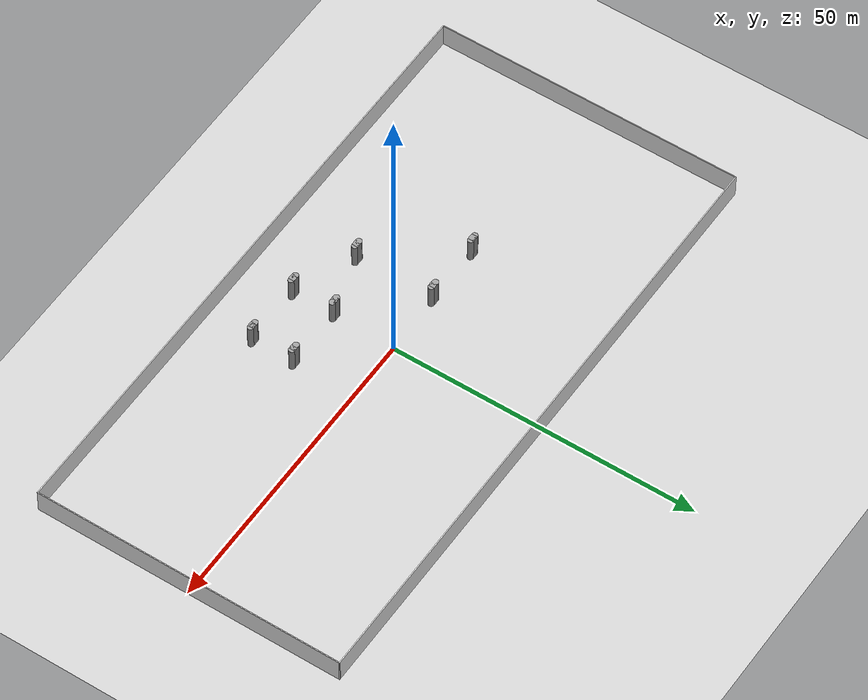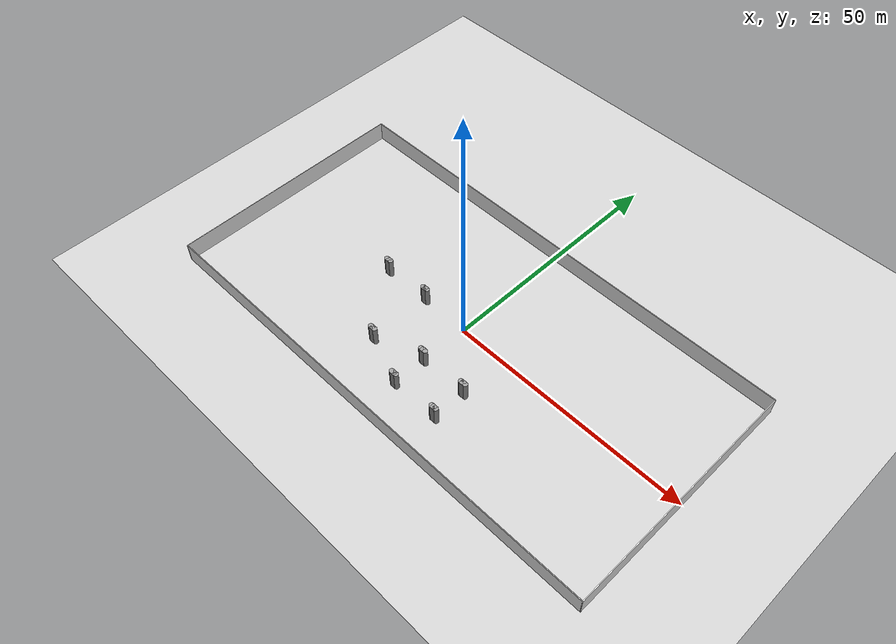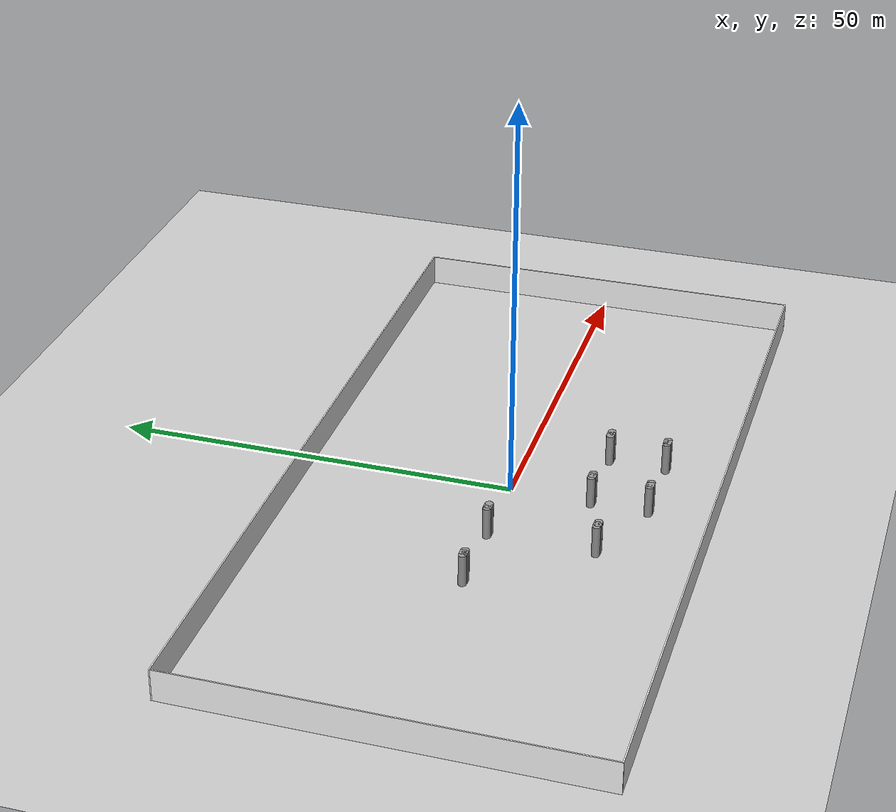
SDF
<sdf version="1.6">
 <world name="default">
  <model name="ground_plane">
   <static>1</static>
   <link name="link">
    <collision name="collision">
     <geometry><plane><normal>0 0 1</normal><size>100 100</size></plane></geometry>
     <surface><friction><ode><mu>100</mu><mu2>50</mu2></ode></friction></surface>
    </collision>
    <visual name="visual">
     <cast_shadows>0</cast_shadows>
     <geometry><plane><normal>0 0 1</normal><size>100 100</size></plane></geometry>
     <material>
      <script><uri>file://media/materials/scripts/gazebo.material</uri><name>Gazebo/Grey</name></script>
     </material>
    </visual>
   </link>
  </model>
  <model name="outer_wall">
   <link name="Wall_12">
    <collision name="Wall_12_Collision">
     <geometry><box><size>100.15 0.15 4</size></box></geometry>
     <pose>0 0 2 0 -0 0</pose>
    </collision>
    <visual name="Wall_12_Visual">
     <pose>0 0 2 0 -0 0</pose>
     <geometry><box><size>100.15 0.15 4</size></box></geometry>
     <material>
      <script>
       <uri>file://media/materials/scripts/gray_tile_100.material</uri>
       <name>gray_tile_100/Diffuse</name>
      </script>
      <ambient>1 1 1 1</ambient>
     </material>
     <meta><layer>0</layer></meta>
    </visual>
    <pose>-1e-06 -25 0 0 -0 0</pose>
   </link>
   <link name="Wall_13">
    <collision name="Wall_13_Collision">
     <geometry><box><size>50.15 0.15 4</size></box></geometry>
     <pose>0 0 2 0 -0 0</pose>
    </collision>
    <visual name="Wall_13_Visual">
     <pose>0 0 2 0 -0 0</pose>
     <geometry><box><size>50.15 0.15 4</size></box></geometry>
     <material>
      <script>
       <uri>file://media/materials/scripts/gray_tile_50.material</uri>
       <name>gray_tile_50/Diffuse</name>
      </script>
      <ambient>1 1 1 1</ambient>
     </material>
     <meta><layer>0</layer></meta>
    </visual>
    <pose>50 -1e-06 0 0 -0 1.5708</pose>
   </link>
   <link name="Wall_14">
    <collision name="Wall_14_Collision">
     <geometry><box><size>100.15 0.15 4</size></box></geometry>
     <pose>0 0 2 0 -0 0</pose>
    </collision>
    <visual name="Wall_14_Visual">
     <pose>0 0 2 0 -0 0</pose>
     <geometry><box><size>100.15 0.15 4</size></box></geometry>
     <material>
      <script>
       <uri>file://media/materials/scripts/gray_tile_100.material</uri>
       <name>gray_tile_100/Diffuse</name>
      </script>
      <ambient>1 1 1 1</ambient>
     </material>
     <meta><layer>0</layer></meta>
    </visual>
    <pose>-1e-06 25 0 0 -0 3.14159</pose>
   </link>
   <link name="Wall_15">
    <collision name="Wall_15_Collision">
     <geometry><box><size>50.15 0.15 4</size></box></geometry>
     <pose>0 0 2 0 -0 0</pose>
    </collision>
    <visual name="Wall_15_Visual">
     <pose>0 0 2 0 -0 0</pose>
     <geometry><box><size>50.15 0.15 4</size></box></geometry>
     <material>
      <script>
       <uri>file://media/materials/scripts/gray_tile_50.material</uri>
       <name>gray_tile_50/Diffuse</name>
      </script>
      <ambient>1 1 1 1</ambient>
     </material>
     <meta><layer>0</layer></meta>
    </visual>
    <pose>-50 -1e-06 0 0 -0 -1.5708</pose>
   </link>
   <static>1</static>
  </model>
  <model name="pillar_clone">
   <link name="link_0">
    <inertial>
     <mass>1</mass>
     <inertia>
      <ixx>0.166667</ixx>
      <ixy>0</ixy>
      <ixz>0</ixz>
      <iyy>0.166667</iyy>
      <iyz>0</iyz>
      <izz>0.166667</izz>
     </inertia>
    </inertial>
    <kinematic>1</kinematic>
    <visual name="visual">
     <geometry><box><size>1 1 4</size></box></geometry>
     <material>
      <lighting>1</lighting>
      <script><uri>file://media/materials/scripts/gazebo.material</uri><name>Gazebo/Grey</name></script>
      <shader type="pixel"><normal_map>__default__</normal_map></shader>
      <ambient>0.3 0.3 0.3 1</ambient>
      <diffuse>0.7 0.7 0.7 1</diffuse>
      <specular>0.01 0.01 0.01 1</specular>
      <emissive>0 0 0 1</emissive>
     </material>
    </visual>
    <collision name="collision">
     <geometry><box><size>1 1 4</size></box></geometry>
     <surface>
      <friction>
       <ode><mu>1</mu><mu2>1</mu2><fdir1>0 0 0</fdir1><slip1>0</slip1><slip2>0</slip2></ode>
       <torsional>
        <coefficient>1</coefficient>
        <patch_radius>0</patch_radius>
        <surface_radius>0</surface_radius>
        <use_patch_radius>1</use_patch_radius>
        <ode><slip>0</slip></ode>
       </torsional>
      </friction>
      <bounce><restitution_coefficient>0</restitution_coefficient><threshold>1e+06</threshold></bounce>
      <contact>
       <collide_without_contact>0</collide_without_contact>
       <collide_without_contact_bitmask>1</collide_without_contact_bitmask>
       <collide_bitmask>1</collide_bitmask>
       <ode>
        <soft_cfm>0</soft_cfm>
        <soft_erp>0.2</soft_erp>
        <kp>1e+13</kp>
        <kd>1</kd>
        <max_vel>0.01</max_vel>
        <min_depth>0</min_depth>
       </ode>
       <bullet>
        <split_impulse>1</split_impulse>
        <split_impulse_penetration_threshold>-0.01</split_impulse_penetration_threshold>
        <soft_cfm>0</soft_cfm>
        <soft_erp>0.2</soft_erp>
        <kp>1e+13</kp>
        <kd>1</kd>
       </bullet>
      </contact>
     </surface>
    </collision>
   </link>
   <link name="link_1">
    <inertial>
     <mass>1</mass>
     <inertia><ixx>0.145833</ixx><ixy>0</ixy><ixz>0</ixz><iyy>0.145833</iyy><iyz>0</iyz><izz>0.125</izz></inertia>
    </inertial>
    <pose>-0.5 0 0 0 -0 0</pose>
    <kinematic>1</kinematic>
    <visual name="visual">
     <geometry><cylinder><radius>0.5</radius><length>4</length></cylinder></geometry>
     <material>
      <lighting>1</lighting>
      <script><uri>file://media/materials/scripts/gazebo.material</uri><name>Gazebo/Grey</name></script>
      <shader type="pixel"><normal_map>__default__</normal_map></shader>
      <ambient>0.3 0.3 0.3 1</ambient>
      <diffuse>0.7 0.7 0.7 1</diffuse>
      <specular>0.01 0.01 0.01 1</specular>
      <emissive>0 0 0 1</emissive>
     </material>
    </visual>
    <collision name="collision">
     <geometry><cylinder><radius>0.5</radius><length>4</length></cylinder></geometry>
     <surface>
      <friction>
       <ode><mu>1</mu><mu2>1</mu2><fdir1>0 0 0</fdir1><slip1>0</slip1><slip2>0</slip2></ode>
       <torsional>
        <coefficient>1</coefficient>
        <patch_radius>0</patch_radius>
        <surface_radius>0</surface_radius>
        <use_patch_radius>1</use_patch_radius>
        <ode><slip>0</slip></ode>
       </torsional>
      </friction>
      <bounce><restitution_coefficient>0</restitution_coefficient><threshold>1e+06</threshold></bounce>
      <contact>
       <collide_without_contact>0</collide_without_contact>
       <collide_without_contact_bitmask>1</collide_without_contact_bitmask>
       <collide_bitmask>1</collide_bitmask>
       <ode>
        <soft_cfm>0</soft_cfm>
        <soft_erp>0.2</soft_erp>
        <kp>1e+13</kp>
        <kd>1</kd>
        <max_vel>0.01</max_vel>
        <min_depth>0</min_depth>
       </ode>
       <bullet>
        <split_impulse>1</split_impulse>
        <split_impulse_penetration_threshold>-0.01</split_impulse_penetration_threshold>
        <soft_cfm>0</soft_cfm>
        <soft_erp>0.2</soft_erp>
        <kp>1e+13</kp>
        <kd>1</kd>
       </bullet>
      </contact>
     </surface>
    </collision>
   </link>
   <link name="link_2">
    <inertial>
     <mass>1</mass>
     <inertia><ixx>0.145833</ixx><ixy>0</ixy><ixz>0</ixz><iyy>0.145833</iyy><iyz>0</iyz><izz>0.125</izz></inertia>
    </inertial>
    <pose>0.5 0 0 0 -0 0</pose>
    <kinematic>1</kinematic>
    <visual name="visual">
     <geometry><cylinder><radius>0.5</radius><length>4</length></cylinder></geometry>
     <material>
      <lighting>1</lighting>
      <script><uri>file://media/materials/scripts/gazebo.material</uri><name>Gazebo/Grey</name></script>
      <shader type="pixel"><normal_map>__default__</normal_map></shader>
      <ambient>0.3 0.3 0.3 1</ambient>
      <diffuse>0.7 0.7 0.7 1</diffuse>
      <specular>0.01 0.01 0.01 1</specular>
      <emissive>0 0 0 1</emissive>
     </material>
    </visual>
    <collision name="collision">
     <geometry><cylinder><radius>0.5</radius><length>4</length></cylinder></geometry>
     <surface>
      <friction>
       <ode><mu>1</mu><mu2>1</mu2><fdir1>0 0 0</fdir1><slip1>0</slip1><slip2>0</slip2></ode>
       <torsional>
        <coefficient>1</coefficient>
        <patch_radius>0</patch_radius>
        <surface_radius>0</surface_radius>
        <use_patch_radius>1</use_patch_radius>
        <ode><slip>0</slip></ode>
       </torsional>
      </friction>
      <bounce><restitution_coefficient>0</restitution_coefficient><threshold>1e+06</threshold></bounce>
      <contact>
       <collide_without_contact>0</collide_without_contact>
       <collide_without_contact_bitmask>1</collide_without_contact_bitmask>
       <collide_bitmask>1</collide_bitmask>
       <ode>
        <soft_cfm>0</soft_cfm>
        <soft_erp>0.2</soft_erp>
        <kp>1e+13</kp>
        <kd>1</kd>
        <max_vel>0.01</max_vel>
        <min_depth>0</min_depth>
       </ode>
       <bullet>
        <split_impulse>1</split_impulse>
        <split_impulse_penetration_threshold>-0.01</split_impulse_penetration_threshold>
        <soft_cfm>0</soft_cfm>
        <soft_erp>0.2</soft_erp>
        <kp>1e+13</kp>
        <kd>1</kd>
       </bullet>
      </contact>
     </surface>
    </collision>
   </link>
   <static>1</static>
   <pose>-10 -13 2 0 -0 0</pose>
  </model>
  <model name="pillar_clone_0">
   <link name="link_0">
    <inertial>
     <mass>1</mass>
     <inertia>
      <ixx>0.166667</ixx>
      <ixy>0</ixy>
      <ixz>0</ixz>
      <iyy>0.166667</iyy>
      <iyz>0</iyz>
      <izz>0.166667</izz>
     </inertia>
    </inertial>
    <kinematic>1</kinematic>
    <visual name="visual">
     <geometry><box><size>1 1 4</size></box></geometry>
     <material>
      <lighting>1</lighting>
      <script><uri>file://media/materials/scripts/gazebo.material</uri><name>Gazebo/Grey</name></script>
      <shader type="pixel"><normal_map>__default__</normal_map></shader>
      <ambient>0.3 0.3 0.3 1</ambient>
      <diffuse>0.7 0.7 0.7 1</diffuse>
      <specular>0.01 0.01 0.01 1</specular>
      <emissive>0 0 0 1</emissive>
     </material>
    </visual>
    <collision name="collision">
     <geometry><box><size>1 1 4</size></box></geometry>
     <surface>
      <friction>
       <ode><mu>1</mu><mu2>1</mu2><fdir1>0 0 0</fdir1><slip1>0</slip1><slip2>0</slip2></ode>
       <torsional>
        <coefficient>1</coefficient>
        <patch_radius>0</patch_radius>
        <surface_radius>0</surface_radius>
        <use_patch_radius>1</use_patch_radius>
        <ode><slip>0</slip></ode>
       </torsional>
      </friction>
      <bounce><restitution_coefficient>0</restitution_coefficient><threshold>1e+06</threshold></bounce>
      <contact>
       <collide_without_contact>0</collide_without_contact>
       <collide_without_contact_bitmask>1</collide_without_contact_bitmask>
       <collide_bitmask>1</collide_bitmask>
       <ode>
        <soft_cfm>0</soft_cfm>
        <soft_erp>0.2</soft_erp>
        <kp>1e+13</kp>
        <kd>1</kd>
        <max_vel>0.01</max_vel>
        <min_depth>0</min_depth>
       </ode>
       <bullet>
        <split_impulse>1</split_impulse>
        <split_impulse_penetration_threshold>-0.01</split_impulse_penetration_threshold>
        <soft_cfm>0</soft_cfm>
        <soft_erp>0.2</soft_erp>
        <kp>1e+13</kp>
        <kd>1</kd>
       </bullet>
      </contact>
     </surface>
    </collision>
   </link>
   <link name="link_1">
    <inertial>
     <mass>1</mass>
     <inertia><ixx>0.145833</ixx><ixy>0</ixy><ixz>0</ixz><iyy>0.145833</iyy><iyz>0</iyz><izz>0.125</izz></inertia>
    </inertial>
    <pose>-0.5 0 0 0 -0 0</pose>
    <kinematic>1</kinematic>
    <visual name="visual">
     <geometry><cylinder><radius>0.5</radius><length>4</length></cylinder></geometry>
     <material>
      <lighting>1</lighting>
      <script><uri>file://media/materials/scripts/gazebo.material</uri><name>Gazebo/Grey</name></script>
      <shader type="pixel"><normal_map>__default__</normal_map></shader>
      <ambient>0.3 0.3 0.3 1</ambient>
      <diffuse>0.7 0.7 0.7 1</diffuse>
      <specular>0.01 0.01 0.01 1</specular>
      <emissive>0 0 0 1</emissive>
     </material>
    </visual>
    <collision name="collision">
     <geometry><cylinder><radius>0.5</radius><length>4</length></cylinder></geometry>
     <surface>
      <friction>
       <ode><mu>1</mu><mu2>1</mu2><fdir1>0 0 0</fdir1><slip1>0</slip1><slip2>0</slip2></ode>
       <torsional>
        <coefficient>1</coefficient>
        <patch_radius>0</patch_radius>
        <surface_radius>0</surface_radius>
        <use_patch_radius>1</use_patch_radius>
        <ode><slip>0</slip></ode>
       </torsional>
      </friction>
      <bounce><restitution_coefficient>0</restitution_coefficient><threshold>1e+06</threshold></bounce>
      <contact>
       <collide_without_contact>0</collide_without_contact>
       <collide_without_contact_bitmask>1</collide_without_contact_bitmask>
       <collide_bitmask>1</collide_bitmask>
       <ode>
        <soft_cfm>0</soft_cfm>
        <soft_erp>0.2</soft_erp>
        <kp>1e+13</kp>
        <kd>1</kd>
        <max_vel>0.01</max_vel>
        <min_depth>0</min_depth>
       </ode>
       <bullet>
        <split_impulse>1</split_impulse>
        <split_impulse_penetration_threshold>-0.01</split_impulse_penetration_threshold>
        <soft_cfm>0</soft_cfm>
        <soft_erp>0.2</soft_erp>
        <kp>1e+13</kp>
        <kd>1</kd>
       </bullet>
      </contact>
     </surface>
    </collision>
   </link>
   <link name="link_2">
    <inertial>
     <mass>1</mass>
     <inertia><ixx>0.145833</ixx><ixy>0</ixy><ixz>0</ixz><iyy>0.145833</iyy><iyz>0</iyz><izz>0.125</izz></inertia>
    </inertial>
    <pose>0.5 0 0 0 -0 0</pose>
    <kinematic>1</kinematic>
    <visual name="visual">
     <geometry><cylinder><radius>0.5</radius><length>4</length></cylinder></geometry>
     <material>
      <lighting>1</lighting>
      <script><uri>file://media/materials/scripts/gazebo.material</uri><name>Gazebo/Grey</name></script>
      <shader type="pixel"><normal_map>__default__</normal_map></shader>
      <ambient>0.3 0.3 0.3 1</ambient>
      <diffuse>0.7 0.7 0.7 1</diffuse>
      <specular>0.01 0.01 0.01 1</specular>
      <emissive>0 0 0 1</emissive>
     </material>
    </visual>
    <collision name="collision">
     <geometry><cylinder><radius>0.5</radius><length>4</length></cylinder></geometry>
     <surface>
      <friction>
       <ode><mu>1</mu><mu2>1</mu2><fdir1>0 0 0</fdir1><slip1>0</slip1><slip2>0</slip2></ode>
       <torsional>
        <coefficient>1</coefficient>
        <patch_radius>0</patch_radius>
        <surface_radius>0</surface_radius>
        <use_patch_radius>1</use_patch_radius>
        <ode><slip>0</slip></ode>
       </torsional>
      </friction>
      <bounce><restitution_coefficient>0</restitution_coefficient><threshold>1e+06</threshold></bounce>
      <contact>
       <collide_without_contact>0</collide_without_contact>
       <collide_without_contact_bitmask>1</collide_without_contact_bitmask>
       <collide_bitmask>1</collide_bitmask>
       <ode>
        <soft_cfm>0</soft_cfm>
        <soft_erp>0.2</soft_erp>
        <kp>1e+13</kp>
        <kd>1</kd>
        <max_vel>0.01</max_vel>
        <min_depth>0</min_depth>
       </ode>
       <bullet>
        <split_impulse>1</split_impulse>
        <split_impulse_penetration_threshold>-0.01</split_impulse_penetration_threshold>
        <soft_cfm>0</soft_cfm>
        <soft_erp>0.2</soft_erp>
        <kp>1e+13</kp>
        <kd>1</kd>
       </bullet>
      </contact>
     </surface>
    </collision>
   </link>
   <static>1</static>
   <pose>0 -17 2 0 -0 0</pose>
  </model>
  <model name="pillar_clone_1">
   <link name="link_0">
    <inertial>
     <mass>1</mass>
     <inertia>
      <ixx>0.166667</ixx>
      <ixy>0</ixy>
      <ixz>0</ixz>
      <iyy>0.166667</iyy>
      <iyz>0</iyz>
      <izz>0.166667</izz>
     </inertia>
    </inertial>
    <kinematic>1</kinematic>
    <visual name="visual">
     <geometry><box><size>1 1 4</size></box></geometry>
     <material>
      <lighting>1</lighting>
      <script><uri>file://media/materials/scripts/gazebo.material</uri><name>Gazebo/Grey</name></script>
      <shader type="pixel"><normal_map>__default__</normal_map></shader>
      <ambient>0.3 0.3 0.3 1</ambient>
      <diffuse>0.7 0.7 0.7 1</diffuse>
      <specular>0.01 0.01 0.01 1</specular>
      <emissive>0 0 0 1</emissive>
     </material>
    </visual>
    <collision name="collision">
     <geometry><box><size>1 1 4</size></box></geometry>
     <surface>
      <friction>
       <ode><mu>1</mu><mu2>1</mu2><fdir1>0 0 0</fdir1><slip1>0</slip1><slip2>0</slip2></ode>
       <torsional>
        <coefficient>1</coefficient>
        <patch_radius>0</patch_radius>
        <surface_radius>0</surface_radius>
        <use_patch_radius>1</use_patch_radius>
        <ode><slip>0</slip></ode>
       </torsional>
      </friction>
      <bounce><restitution_coefficient>0</restitution_coefficient><threshold>1e+06</threshold></bounce>
      <contact>
       <collide_without_contact>0</collide_without_contact>
       <collide_without_contact_bitmask>1</collide_without_contact_bitmask>
       <collide_bitmask>1</collide_bitmask>
       <ode>
        <soft_cfm>0</soft_cfm>
        <soft_erp>0.2</soft_erp>
        <kp>1e+13</kp>
        <kd>1</kd>
        <max_vel>0.01</max_vel>
        <min_depth>0</min_depth>
       </ode>
       <bullet>
        <split_impulse>1</split_impulse>
        <split_impulse_penetration_threshold>-0.01</split_impulse_penetration_threshold>
        <soft_cfm>0</soft_cfm>
        <soft_erp>0.2</soft_erp>
        <kp>1e+13</kp>
        <kd>1</kd>
       </bullet>
      </contact>
     </surface>
    </collision>
   </link>
   <link name="link_1">
    <inertial>
     <mass>1</mass>
     <inertia><ixx>0.145833</ixx><ixy>0</ixy><ixz>0</ixz><iyy>0.145833</iyy><iyz>0</iyz><izz>0.125</izz></inertia>
    </inertial>
    <pose>-0.5 0 0 0 -0 0</pose>
    <kinematic>1</kinematic>
    <visual name="visual">
     <geometry><cylinder><radius>0.5</radius><length>4</length></cylinder></geometry>
     <material>
      <lighting>1</lighting>
      <script><uri>file://media/materials/scripts/gazebo.material</uri><name>Gazebo/Grey</name></script>
      <shader type="pixel"><normal_map>__default__</normal_map></shader>
      <ambient>0.3 0.3 0.3 1</ambient>
      <diffuse>0.7 0.7 0.7 1</diffuse>
      <specular>0.01 0.01 0.01 1</specular>
      <emissive>0 0 0 1</emissive>
     </material>
    </visual>
    <collision name="collision">
     <geometry><cylinder><radius>0.5</radius><length>4</length></cylinder></geometry>
     <surface>
      <friction>
       <ode><mu>1</mu><mu2>1</mu2><fdir1>0 0 0</fdir1><slip1>0</slip1><slip2>0</slip2></ode>
       <torsional>
        <coefficient>1</coefficient>
        <patch_radius>0</patch_radius>
        <surface_radius>0</surface_radius>
        <use_patch_radius>1</use_patch_radius>
        <ode><slip>0</slip></ode>
       </torsional>
      </friction>
      <bounce><restitution_coefficient>0</restitution_coefficient><threshold>1e+06</threshold></bounce>
      <contact>
       <collide_without_contact>0</collide_without_contact>
       <collide_without_contact_bitmask>1</collide_without_contact_bitmask>
       <collide_bitmask>1</collide_bitmask>
       <ode>
        <soft_cfm>0</soft_cfm>
        <soft_erp>0.2</soft_erp>
        <kp>1e+13</kp>
        <kd>1</kd>
        <max_vel>0.01</max_vel>
        <min_depth>0</min_depth>
       </ode>
       <bullet>
        <split_impulse>1</split_impulse>
        <split_impulse_penetration_threshold>-0.01</split_impulse_penetration_threshold>
        <soft_cfm>0</soft_cfm>
        <soft_erp>0.2</soft_erp>
        <kp>1e+13</kp>
        <kd>1</kd>
       </bullet>
      </contact>
     </surface>
    </collision>
   </link>
   <link name="link_2">
    <inertial>
     <mass>1</mass>
     <inertia><ixx>0.145833</ixx><ixy>0</ixy><ixz>0</ixz><iyy>0.145833</iyy><iyz>0</iyz><izz>0.125</izz></inertia>
    </inertial>
    <pose>0.5 0 0 0 -0 0</pose>
    <kinematic>1</kinematic>
    <visual name="visual">
     <geometry><cylinder><radius>0.5</radius><length>4</length></cylinder></geometry>
     <material>
      <lighting>1</lighting>
      <script><uri>file://media/materials/scripts/gazebo.material</uri><name>Gazebo/Grey</name></script>
      <shader type="pixel"><normal_map>__default__</normal_map></shader>
      <ambient>0.3 0.3 0.3 1</ambient>
      <diffuse>0.7 0.7 0.7 1</diffuse>
      <specular>0.01 0.01 0.01 1</specular>
      <emissive>0 0 0 1</emissive>
     </material>
    </visual>
    <collision name="collision">
     <geometry><cylinder><radius>0.5</radius><length>4</length></cylinder></geometry>
     <surface>
      <friction>
       <ode><mu>1</mu><mu2>1</mu2><fdir1>0 0 0</fdir1><slip1>0</slip1><slip2>0</slip2></ode>
       <torsional>
        <coefficient>1</coefficient>
        <patch_radius>0</patch_radius>
        <surface_radius>0</surface_radius>
        <use_patch_radius>1</use_patch_radius>
        <ode><slip>0</slip></ode>
       </torsional>
      </friction>
      <bounce><restitution_coefficient>0</restitution_coefficient><threshold>1e+06</threshold></bounce>
      <contact>
       <collide_without_contact>0</collide_without_contact>
       <collide_without_contact_bitmask>1</collide_without_contact_bitmask>
       <collide_bitmask>1</collide_bitmask>
       <ode>
        <soft_cfm>0</soft_cfm>
        <soft_erp>0.2</soft_erp>
        <kp>1e+13</kp>
        <kd>1</kd>
        <max_vel>0.01</max_vel>
        <min_depth>0</min_depth>
       </ode>
       <bullet>
        <split_impulse>1</split_impulse>
        <split_impulse_penetration_threshold>-0.01</split_impulse_penetration_threshold>
        <soft_cfm>0</soft_cfm>
        <soft_erp>0.2</soft_erp>
        <kp>1e+13</kp>
        <kd>1</kd>
       </bullet>
      </contact>
     </surface>
    </collision>
   </link>
   <static>1</static>
   <pose>10 -17 2 0 -0 0</pose>
  </model>
  <model name="pillar_clone_6">
   <link name="link_0">
    <inertial>
     <mass>1</mass>
     <inertia>
      <ixx>0.166667</ixx>
      <ixy>0</ixy>
      <ixz>0</ixz>
      <iyy>0.166667</iyy>
      <iyz>0</iyz>
      <izz>0.166667</izz>
     </inertia>
    </inertial>
    <kinematic>1</kinematic>
    <visual name="visual">
     <geometry><box><size>1 1 4</size></box></geometry>
     <material>
      <lighting>1</lighting>
      <script><uri>file://media/materials/scripts/gazebo.material</uri><name>Gazebo/Grey</name></script>
      <shader type="pixel"><normal_map>__default__</normal_map></shader>
      <ambient>0.3 0.3 0.3 1</ambient>
      <diffuse>0.7 0.7 0.7 1</diffuse>
      <specular>0.01 0.01 0.01 1</specular>
      <emissive>0 0 0 1</emissive>
     </material>
    </visual>
    <collision name="collision">
     <geometry><box><size>1 1 4</size></box></geometry>
     <surface>
      <friction>
       <ode><mu>1</mu><mu2>1</mu2><fdir1>0 0 0</fdir1><slip1>0</slip1><slip2>0</slip2></ode>
       <torsional>
        <coefficient>1</coefficient>
        <patch_radius>0</patch_radius>
        <surface_radius>0</surface_radius>
        <use_patch_radius>1</use_patch_radius>
        <ode><slip>0</slip></ode>
       </torsional>
      </friction>
      <bounce><restitution_coefficient>0</restitution_coefficient><threshold>1e+06</threshold></bounce>
      <contact>
       <collide_without_contact>0</collide_without_contact>
       <collide_without_contact_bitmask>1</collide_without_contact_bitmask>
       <collide_bitmask>1</collide_bitmask>
       <ode>
        <soft_cfm>0</soft_cfm>
        <soft_erp>0.2</soft_erp>
        <kp>1e+13</kp>
        <kd>1</kd>
        <max_vel>0.01</max_vel>
        <min_depth>0</min_depth>
       </ode>
       <bullet>
        <split_impulse>1</split_impulse>
        <split_impulse_penetration_threshold>-0.01</split_impulse_penetration_threshold>
        <soft_cfm>0</soft_cfm>
        <soft_erp>0.2</soft_erp>
        <kp>1e+13</kp>
        <kd>1</kd>
       </bullet>
      </contact>
     </surface>
    </collision>
   </link>
   <link name="link_1">
    <inertial>
     <mass>1</mass>
     <inertia><ixx>0.145833</ixx><ixy>0</ixy><ixz>0</ixz><iyy>0.145833</iyy><iyz>0</iyz><izz>0.125</izz></inertia>
    </inertial>
    <pose>-0.5 0 0 0 -0 0</pose>
    <kinematic>1</kinematic>
    <visual name="visual">
     <geometry><cylinder><radius>0.5</radius><length>4</length></cylinder></geometry>
     <material>
      <lighting>1</lighting>
      <script><uri>file://media/materials/scripts/gazebo.material</uri><name>Gazebo/Grey</name></script>
      <shader type="pixel"><normal_map>__default__</normal_map></shader>
      <ambient>0.3 0.3 0.3 1</ambient>
      <diffuse>0.7 0.7 0.7 1</diffuse>
      <specular>0.01 0.01 0.01 1</specular>
      <emissive>0 0 0 1</emissive>
     </material>
    </visual>
    <collision name="collision">
     <geometry><cylinder><radius>0.5</radius><length>4</length></cylinder></geometry>
     <surface>
      <friction>
       <ode><mu>1</mu><mu2>1</mu2><fdir1>0 0 0</fdir1><slip1>0</slip1><slip2>0</slip2></ode>
       <torsional>
        <coefficient>1</coefficient>
        <patch_radius>0</patch_radius>
        <surface_radius>0</surface_radius>
        <use_patch_radius>1</use_patch_radius>
        <ode><slip>0</slip></ode>
       </torsional>
      </friction>
      <bounce><restitution_coefficient>0</restitution_coefficient><threshold>1e+06</threshold></bounce>
      <contact>
       <collide_without_contact>0</collide_without_contact>
       <collide_without_contact_bitmask>1</collide_without_contact_bitmask>
       <collide_bitmask>1</collide_bitmask>
       <ode>
        <soft_cfm>0</soft_cfm>
        <soft_erp>0.2</soft_erp>
        <kp>1e+13</kp>
        <kd>1</kd>
        <max_vel>0.01</max_vel>
        <min_depth>0</min_depth>
       </ode>
       <bullet>
        <split_impulse>1</split_impulse>
        <split_impulse_penetration_threshold>-0.01</split_impulse_penetration_threshold>
        <soft_cfm>0</soft_cfm>
        <soft_erp>0.2</soft_erp>
        <kp>1e+13</kp>
        <kd>1</kd>
       </bullet>
      </contact>
     </surface>
    </collision>
   </link>
   <link name="link_2">
    <inertial>
     <mass>1</mass>
     <inertia><ixx>0.145833</ixx><ixy>0</ixy><ixz>0</ixz><iyy>0.145833</iyy><iyz>0</iyz><izz>0.125</izz></inertia>
    </inertial>
    <pose>0.5 0 0 0 -0 0</pose>
    <kinematic>1</kinematic>
    <visual name="visual">
     <geometry><cylinder><radius>0.5</radius><length>4</length></cylinder></geometry>
     <material>
      <lighting>1</lighting>
      <script><uri>file://media/materials/scripts/gazebo.material</uri><name>Gazebo/Grey</name></script>
      <shader type="pixel"><normal_map>__default__</normal_map></shader>
      <ambient>0.3 0.3 0.3 1</ambient>
      <diffuse>0.7 0.7 0.7 1</diffuse>
      <specular>0.01 0.01 0.01 1</specular>
      <emissive>0 0 0 1</emissive>
     </material>
    </visual>
    <collision name="collision">
     <geometry><cylinder><radius>0.5</radius><length>4</length></cylinder></geometry>
     <surface>
      <friction>
       <ode><mu>1</mu><mu2>1</mu2><fdir1>0 0 0</fdir1><slip1>0</slip1><slip2>0</slip2></ode>
       <torsional>
        <coefficient>1</coefficient>
        <patch_radius>0</patch_radius>
        <surface_radius>0</surface_radius>
        <use_patch_radius>1</use_patch_radius>
        <ode><slip>0</slip></ode>
       </torsional>
      </friction>
      <bounce><restitution_coefficient>0</restitution_coefficient><threshold>1e+06</threshold></bounce>
      <contact>
       <collide_without_contact>0</collide_without_contact>
       <collide_without_contact_bitmask>1</collide_without_contact_bitmask>
       <collide_bitmask>1</collide_bitmask>
       <ode>
        <soft_cfm>0</soft_cfm>
        <soft_erp>0.2</soft_erp>
        <kp>1e+13</kp>
        <kd>1</kd>
        <max_vel>0.01</max_vel>
        <min_depth>0</min_depth>
       </ode>
       <bullet>
        <split_impulse>1</split_impulse>
        <split_impulse_penetration_threshold>-0.01</split_impulse_penetration_threshold>
        <soft_cfm>0</soft_cfm>
        <soft_erp>0.2</soft_erp>
        <kp>1e+13</kp>
        <kd>1</kd>
       </bullet>
      </contact>
     </surface>
    </collision>
   </link>
   <static>1</static>
   <pose>-20 0 2 0 -0 0</pose>
  </model>
  <model name="pillar_clone_6_clone_1">
   <link name="link_0">
    <inertial>
     <mass>1</mass>
     <inertia>
      <ixx>0.166667</ixx>
      <ixy>0</ixy>
      <ixz>0</ixz>
      <iyy>0.166667</iyy>
      <iyz>0</iyz>
      <izz>0.166667</izz>
     </inertia>
    </inertial>
    <kinematic>1</kinematic>
    <visual name="visual">
     <geometry><box><size>1 1 4</size></box></geometry>
     <material>
      <lighting>1</lighting>
      <script><uri>file://media/materials/scripts/gazebo.material</uri><name>Gazebo/Grey</name></script>
      <shader type="pixel"><normal_map>__default__</normal_map></shader>
      <ambient>0.3 0.3 0.3 1</ambient>
      <diffuse>0.7 0.7 0.7 1</diffuse>
      <specular>0.01 0.01 0.01 1</specular>
      <emissive>0 0 0 1</emissive>
     </material>
    </visual>
    <collision name="collision">
     <geometry><box><size>1 1 4</size></box></geometry>
     <surface>
      <friction>
       <ode><mu>1</mu><mu2>1</mu2><fdir1>0 0 0</fdir1><slip1>0</slip1><slip2>0</slip2></ode>
       <torsional>
        <coefficient>1</coefficient>
        <patch_radius>0</patch_radius>
        <surface_radius>0</surface_radius>
        <use_patch_radius>1</use_patch_radius>
        <ode><slip>0</slip></ode>
       </torsional>
      </friction>
      <bounce><restitution_coefficient>0</restitution_coefficient><threshold>1e+06</threshold></bounce>
      <contact>
       <collide_without_contact>0</collide_without_contact>
       <collide_without_contact_bitmask>1</collide_without_contact_bitmask>
       <collide_bitmask>1</collide_bitmask>
       <ode>
        <soft_cfm>0</soft_cfm>
        <soft_erp>0.2</soft_erp>
        <kp>1e+13</kp>
        <kd>1</kd>
        <max_vel>0.01</max_vel>
        <min_depth>0</min_depth>
       </ode>
       <bullet>
        <split_impulse>1</split_impulse>
        <split_impulse_penetration_threshold>-0.01</split_impulse_penetration_threshold>
        <soft_cfm>0</soft_cfm>
        <soft_erp>0.2</soft_erp>
        <kp>1e+13</kp>
        <kd>1</kd>
       </bullet>
      </contact>
     </surface>
    </collision>
   </link>
   <link name="link_1">
    <inertial>
     <mass>1</mass>
     <inertia><ixx>0.145833</ixx><ixy>0</ixy><ixz>0</ixz><iyy>0.145833</iyy><iyz>0</iyz><izz>0.125</izz></inertia>
    </inertial>
    <pose>-0.5 0 0 0 -0 0</pose>
    <kinematic>1</kinematic>
    <visual name="visual">
     <geometry><cylinder><radius>0.5</radius><length>4</length></cylinder></geometry>
     <material>
      <lighting>1</lighting>
      <script><uri>file://media/materials/scripts/gazebo.material</uri><name>Gazebo/Grey</name></script>
      <shader type="pixel"><normal_map>__default__</normal_map></shader>
      <ambient>0.3 0.3 0.3 1</ambient>
      <diffuse>0.7 0.7 0.7 1</diffuse>
      <specular>0.01 0.01 0.01 1</specular>
      <emissive>0 0 0 1</emissive>
     </material>
    </visual>
    <collision name="collision">
     <geometry><cylinder><radius>0.5</radius><length>4</length></cylinder></geometry>
     <surface>
      <friction>
       <ode><mu>1</mu><mu2>1</mu2><fdir1>0 0 0</fdir1><slip1>0</slip1><slip2>0</slip2></ode>
       <torsional>
        <coefficient>1</coefficient>
        <patch_radius>0</patch_radius>
        <surface_radius>0</surface_radius>
        <use_patch_radius>1</use_patch_radius>
        <ode><slip>0</slip></ode>
       </torsional>
      </friction>
      <bounce><restitution_coefficient>0</restitution_coefficient><threshold>1e+06</threshold></bounce>
      <contact>
       <collide_without_contact>0</collide_without_contact>
       <collide_without_contact_bitmask>1</collide_without_contact_bitmask>
       <collide_bitmask>1</collide_bitmask>
       <ode>
        <soft_cfm>0</soft_cfm>
        <soft_erp>0.2</soft_erp>
        <kp>1e+13</kp>
        <kd>1</kd>
        <max_vel>0.01</max_vel>
        <min_depth>0</min_depth>
       </ode>
       <bullet>
        <split_impulse>1</split_impulse>
        <split_impulse_penetration_threshold>-0.01</split_impulse_penetration_threshold>
        <soft_cfm>0</soft_cfm>
        <soft_erp>0.2</soft_erp>
        <kp>1e+13</kp>
        <kd>1</kd>
       </bullet>
      </contact>
     </surface>
    </collision>
   </link>
   <link name="link_2">
    <inertial>
     <mass>1</mass>
     <inertia><ixx>0.145833</ixx><ixy>0</ixy><ixz>0</ixz><iyy>0.145833</iyy><iyz>0</iyz><izz>0.125</izz></inertia>
    </inertial>
    <pose>0.5 0 0 0 -0 0</pose>
    <kinematic>1</kinematic>
    <visual name="visual">
     <geometry><cylinder><radius>0.5</radius><length>4</length></cylinder></geometry>
     <material>
      <lighting>1</lighting>
      <script><uri>file://media/materials/scripts/gazebo.material</uri><name>Gazebo/Grey</name></script>
      <shader type="pixel"><normal_map>__default__</normal_map></shader>
      <ambient>0.3 0.3 0.3 1</ambient>
      <diffuse>0.7 0.7 0.7 1</diffuse>
      <specular>0.01 0.01 0.01 1</specular>
      <emissive>0 0 0 1</emissive>
     </material>
    </visual>
    <collision name="collision">
     <geometry><cylinder><radius>0.5</radius><length>4</length></cylinder></geometry>
     <surface>
      <friction>
       <ode><mu>1</mu><mu2>1</mu2><fdir1>0 0 0</fdir1><slip1>0</slip1><slip2>0</slip2></ode>
       <torsional>
        <coefficient>1</coefficient>
        <patch_radius>0</patch_radius>
        <surface_radius>0</surface_radius>
        <use_patch_radius>1</use_patch_radius>
        <ode><slip>0</slip></ode>
       </torsional>
      </friction>
      <bounce><restitution_coefficient>0</restitution_coefficient><threshold>1e+06</threshold></bounce>
      <contact>
       <collide_without_contact>0</collide_without_contact>
       <collide_without_contact_bitmask>1</collide_without_contact_bitmask>
       <collide_bitmask>1</collide_bitmask>
       <ode>
        <soft_cfm>0</soft_cfm>
        <soft_erp>0.2</soft_erp>
        <kp>1e+13</kp>
        <kd>1</kd>
        <max_vel>0.01</max_vel>
        <min_depth>0</min_depth>
       </ode>
       <bullet>
        <split_impulse>1</split_impulse>
        <split_impulse_penetration_threshold>-0.01</split_impulse_penetration_threshold>
        <soft_cfm>0</soft_cfm>
        <soft_erp>0.2</soft_erp>
        <kp>1e+13</kp>
        <kd>1</kd>
       </bullet>
      </contact>
     </surface>
    </collision>
   </link>
   <static>1</static>
   <pose>-10 0 2 0 -0 0</pose>
  </model>
  <model name="pillar_clone_6_clone_9">
   <link name="link_0">
    <inertial>
     <mass>1</mass>
     <inertia>
      <ixx>0.166667</ixx>
      <ixy>0</ixy>
      <ixz>0</ixz>
      <iyy>0.166667</iyy>
      <iyz>0</iyz>
      <izz>0.166667</izz>
     </inertia>
    </inertial>
    <kinematic>1</kinematic>
    <visual name="visual">
     <geometry><box><size>1 1 4</size></box></geometry>
     <material>
      <lighting>1</lighting>
      <script><uri>file://media/materials/scripts/gazebo.material</uri><name>Gazebo/Grey</name></script>
      <shader type="pixel"><normal_map>__default__</normal_map></shader>
      <ambient>0.3 0.3 0.3 1</ambient>
      <diffuse>0.7 0.7 0.7 1</diffuse>
      <specular>0.01 0.01 0.01 1</specular>
      <emissive>0 0 0 1</emissive>
     </material>
    </visual>
    <collision name="collision">
     <geometry><box><size>1 1 4</size></box></geometry>
     <surface>
      <friction>
       <ode><mu>1</mu><mu2>1</mu2><fdir1>0 0 0</fdir1><slip1>0</slip1><slip2>0</slip2></ode>
       <torsional>
        <coefficient>1</coefficient>
        <patch_radius>0</patch_radius>
        <surface_radius>0</surface_radius>
        <use_patch_radius>1</use_patch_radius>
        <ode><slip>0</slip></ode>
       </torsional>
      </friction>
      <bounce><restitution_coefficient>0</restitution_coefficient><threshold>1e+06</threshold></bounce>
      <contact>
       <collide_without_contact>0</collide_without_contact>
       <collide_without_contact_bitmask>1</collide_without_contact_bitmask>
       <collide_bitmask>1</collide_bitmask>
       <ode>
        <soft_cfm>0</soft_cfm>
        <soft_erp>0.2</soft_erp>
        <kp>1e+13</kp>
        <kd>1</kd>
        <max_vel>0.01</max_vel>
        <min_depth>0</min_depth>
       </ode>
       <bullet>
        <split_impulse>1</split_impulse>
        <split_impulse_penetration_threshold>-0.01</split_impulse_penetration_threshold>
        <soft_cfm>0</soft_cfm>
        <soft_erp>0.2</soft_erp>
        <kp>1e+13</kp>
        <kd>1</kd>
       </bullet>
      </contact>
     </surface>
    </collision>
   </link>
   <link name="link_1">
    <inertial>
     <mass>1</mass>
     <inertia><ixx>0.145833</ixx><ixy>0</ixy><ixz>0</ixz><iyy>0.145833</iyy><iyz>0</iyz><izz>0.125</izz></inertia>
    </inertial>
    <pose>-0.5 0 0 0 -0 0</pose>
    <kinematic>1</kinematic>
    <visual name="visual">
     <geometry><cylinder><radius>0.5</radius><length>4</length></cylinder></geometry>
     <material>
      <lighting>1</lighting>
      <script><uri>file://media/materials/scripts/gazebo.material</uri><name>Gazebo/Grey</name></script>
      <shader type="pixel"><normal_map>__default__</normal_map></shader>
      <ambient>0.3 0.3 0.3 1</ambient>
      <diffuse>0.7 0.7 0.7 1</diffuse>
      <specular>0.01 0.01 0.01 1</specular>
      <emissive>0 0 0 1</emissive>
     </material>
    </visual>
    <collision name="collision">
     <geometry><cylinder><radius>0.5</radius><length>4</length></cylinder></geometry>
     <surface>
      <friction>
       <ode><mu>1</mu><mu2>1</mu2><fdir1>0 0 0</fdir1><slip1>0</slip1><slip2>0</slip2></ode>
       <torsional>
        <coefficient>1</coefficient>
        <patch_radius>0</patch_radius>
        <surface_radius>0</surface_radius>
        <use_patch_radius>1</use_patch_radius>
        <ode><slip>0</slip></ode>
       </torsional>
      </friction>
      <bounce><restitution_coefficient>0</restitution_coefficient><threshold>1e+06</threshold></bounce>
      <contact>
       <collide_without_contact>0</collide_without_contact>
       <collide_without_contact_bitmask>1</collide_without_contact_bitmask>
       <collide_bitmask>1</collide_bitmask>
       <ode>
        <soft_cfm>0</soft_cfm>
        <soft_erp>0.2</soft_erp>
        <kp>1e+13</kp>
        <kd>1</kd>
        <max_vel>0.01</max_vel>
        <min_depth>0</min_depth>
       </ode>
       <bullet>
        <split_impulse>1</split_impulse>
        <split_impulse_penetration_threshold>-0.01</split_impulse_penetration_threshold>
        <soft_cfm>0</soft_cfm>
        <soft_erp>0.2</soft_erp>
        <kp>1e+13</kp>
        <kd>1</kd>
       </bullet>
      </contact>
     </surface>
    </collision>
   </link>
   <link name="link_2">
    <inertial>
     <mass>1</mass>
     <inertia><ixx>0.145833</ixx><ixy>0</ixy><ixz>0</ixz><iyy>0.145833</iyy><iyz>0</iyz><izz>0.125</izz></inertia>
    </inertial>
    <pose>0.5 0 0 0 -0 0</pose>
    <kinematic>1</kinematic>
    <visual name="visual">
     <geometry><cylinder><radius>0.5</radius><length>4</length></cylinder></geometry>
     <material>
      <lighting>1</lighting>
      <script><uri>file://media/materials/scripts/gazebo.material</uri><name>Gazebo/Grey</name></script>
      <shader type="pixel"><normal_map>__default__</normal_map></shader>
      <ambient>0.3 0.3 0.3 1</ambient>
      <diffuse>0.7 0.7 0.7 1</diffuse>
      <specular>0.01 0.01 0.01 1</specular>
      <emissive>0 0 0 1</emissive>
     </material>
    </visual>
    <collision name="collision">
     <geometry><cylinder><radius>0.5</radius><length>4</length></cylinder></geometry>
     <surface>
      <friction>
       <ode><mu>1</mu><mu2>1</mu2><fdir1>0 0 0</fdir1><slip1>0</slip1><slip2>0</slip2></ode>
       <torsional>
        <coefficient>1</coefficient>
        <patch_radius>0</patch_radius>
        <surface_radius>0</surface_radius>
        <use_patch_radius>1</use_patch_radius>
        <ode><slip>0</slip></ode>
       </torsional>
      </friction>
      <bounce><restitution_coefficient>0</restitution_coefficient><threshold>1e+06</threshold></bounce>
      <contact>
       <collide_without_contact>0</collide_without_contact>
       <collide_without_contact_bitmask>1</collide_without_contact_bitmask>
       <collide_bitmask>1</collide_bitmask>
       <ode>
        <soft_cfm>0</soft_cfm>
        <soft_erp>0.2</soft_erp>
        <kp>1e+13</kp>
        <kd>1</kd>
        <max_vel>0.01</max_vel>
        <min_depth>0</min_depth>
       </ode>
       <bullet>
        <split_impulse>1</split_impulse>
        <split_impulse_penetration_threshold>-0.01</split_impulse_penetration_threshold>
        <soft_cfm>0</soft_cfm>
        <soft_erp>0.2</soft_erp>
        <kp>1e+13</kp>
        <kd>1</kd>
       </bullet>
      </contact>
     </surface>
    </collision>
   </link>
   <static>1</static>
   <pose>0 -10 2 0 -0 0</pose>
  </model>
  <model name="pillar_clone_6_clone_10">
   <link name="link_0">
    <inertial>
     <mass>1</mass>
     <inertia>
      <ixx>0.166667</ixx>
      <ixy>0</ixy>
      <ixz>0</ixz>
      <iyy>0.166667</iyy>
      <iyz>0</iyz>
      <izz>0.166667</izz>
     </inertia>
    </inertial>
    <kinematic>1</kinematic>
    <visual name="visual">
     <geometry><box><size>1 1 4</size></box></geometry>
     <material>
      <lighting>1</lighting>
      <script><uri>file://media/materials/scripts/gazebo.material</uri><name>Gazebo/Grey</name></script>
      <shader type="pixel"><normal_map>__default__</normal_map></shader>
      <ambient>0.3 0.3 0.3 1</ambient>
      <diffuse>0.7 0.7 0.7 1</diffuse>
      <specular>0.01 0.01 0.01 1</specular>
      <emissive>0 0 0 1</emissive>
     </material>
    </visual>
    <collision name="collision">
     <geometry><box><size>1 1 4</size></box></geometry>
     <surface>
      <friction>
       <ode><mu>1</mu><mu2>1</mu2><fdir1>0 0 0</fdir1><slip1>0</slip1><slip2>0</slip2></ode>
       <torsional>
        <coefficient>1</coefficient>
        <patch_radius>0</patch_radius>
        <surface_radius>0</surface_radius>
        <use_patch_radius>1</use_patch_radius>
        <ode><slip>0</slip></ode>
       </torsional>
      </friction>
      <bounce><restitution_coefficient>0</restitution_coefficient><threshold>1e+06</threshold></bounce>
      <contact>
       <collide_without_contact>0</collide_without_contact>
       <collide_without_contact_bitmask>1</collide_without_contact_bitmask>
       <collide_bitmask>1</collide_bitmask>
       <ode>
        <soft_cfm>0</soft_cfm>
        <soft_erp>0.2</soft_erp>
        <kp>1e+13</kp>
        <kd>1</kd>
        <max_vel>0.01</max_vel>
        <min_depth>0</min_depth>
       </ode>
       <bullet>
        <split_impulse>1</split_impulse>
        <split_impulse_penetration_threshold>-0.01</split_impulse_penetration_threshold>
        <soft_cfm>0</soft_cfm>
        <soft_erp>0.2</soft_erp>
        <kp>1e+13</kp>
        <kd>1</kd>
       </bullet>
      </contact>
     </surface>
    </collision>
   </link>
   <link name="link_1">
    <inertial>
     <mass>1</mass>
     <inertia><ixx>0.145833</ixx><ixy>0</ixy><ixz>0</ixz><iyy>0.145833</iyy><iyz>0</iyz><izz>0.125</izz></inertia>
    </inertial>
    <pose>-0.5 0 0 0 -0 0</pose>
    <kinematic>1</kinematic>
    <visual name="visual">
     <geometry><cylinder><radius>0.5</radius><length>4</length></cylinder></geometry>
     <material>
      <lighting>1</lighting>
      <script><uri>file://media/materials/scripts/gazebo.material</uri><name>Gazebo/Grey</name></script>
      <shader type="pixel"><normal_map>__default__</normal_map></shader>
      <ambient>0.3 0.3 0.3 1</ambient>
      <diffuse>0.7 0.7 0.7 1</diffuse>
      <specular>0.01 0.01 0.01 1</specular>
      <emissive>0 0 0 1</emissive>
     </material>
    </visual>
    <collision name="collision">
     <geometry><cylinder><radius>0.5</radius><length>4</length></cylinder></geometry>
     <surface>
      <friction>
       <ode><mu>1</mu><mu2>1</mu2><fdir1>0 0 0</fdir1><slip1>0</slip1><slip2>0</slip2></ode>
       <torsional>
        <coefficient>1</coefficient>
        <patch_radius>0</patch_radius>
        <surface_radius>0</surface_radius>
        <use_patch_radius>1</use_patch_radius>
        <ode><slip>0</slip></ode>
       </torsional>
      </friction>
      <bounce><restitution_coefficient>0</restitution_coefficient><threshold>1e+06</threshold></bounce>
      <contact>
       <collide_without_contact>0</collide_without_contact>
       <collide_without_contact_bitmask>1</collide_without_contact_bitmask>
       <collide_bitmask>1</collide_bitmask>
       <ode>
        <soft_cfm>0</soft_cfm>
        <soft_erp>0.2</soft_erp>
        <kp>1e+13</kp>
        <kd>1</kd>
        <max_vel>0.01</max_vel>
        <min_depth>0</min_depth>
       </ode>
       <bullet>
        <split_impulse>1</split_impulse>
        <split_impulse_penetration_threshold>-0.01</split_impulse_penetration_threshold>
        <soft_cfm>0</soft_cfm>
        <soft_erp>0.2</soft_erp>
        <kp>1e+13</kp>
        <kd>1</kd>
       </bullet>
      </contact>
     </surface>
    </collision>
   </link>
   <link name="link_2">
    <inertial>
     <mass>1</mass>
     <inertia><ixx>0.145833</ixx><ixy>0</ixy><ixz>0</ixz><iyy>0.145833</iyy><iyz>0</iyz><izz>0.125</izz></inertia>
    </inertial>
    <pose>0.5 0 0 0 -0 0</pose>
    <kinematic>1</kinematic>
    <visual name="visual">
     <geometry><cylinder><radius>0.5</radius><length>4</length></cylinder></geometry>
     <material>
      <lighting>1</lighting>
      <script><uri>file://media/materials/scripts/gazebo.material</uri><name>Gazebo/Grey</name></script>
      <shader type="pixel"><normal_map>__default__</normal_map></shader>
      <ambient>0.3 0.3 0.3 1</ambient>
      <diffuse>0.7 0.7 0.7 1</diffuse>
      <specular>0.01 0.01 0.01 1</specular>
      <emissive>0 0 0 1</emissive>
     </material>
    </visual>
    <collision name="collision">
     <geometry><cylinder><radius>0.5</radius><length>4</length></cylinder></geometry>
     <surface>
      <friction>
       <ode><mu>1</mu><mu2>1</mu2><fdir1>0 0 0</fdir1><slip1>0</slip1><slip2>0</slip2></ode>
       <torsional>
        <coefficient>1</coefficient>
        <patch_radius>0</patch_radius>
        <surface_radius>0</surface_radius>
        <use_patch_radius>1</use_patch_radius>
        <ode><slip>0</slip></ode>
       </torsional>
      </friction>
      <bounce><restitution_coefficient>0</restitution_coefficient><threshold>1e+06</threshold></bounce>
      <contact>
       <collide_without_contact>0</collide_without_contact>
       <collide_without_contact_bitmask>1</collide_without_contact_bitmask>
       <collide_bitmask>1</collide_bitmask>
       <ode>
        <soft_cfm>0</soft_cfm>
        <soft_erp>0.2</soft_erp>
        <kp>1e+13</kp>
        <kd>1</kd>
        <max_vel>0.01</max_vel>
        <min_depth>0</min_depth>
       </ode>
       <bullet>
        <split_impulse>1</split_impulse>
        <split_impulse_penetration_threshold>-0.01</split_impulse_penetration_threshold>
        <soft_cfm>0</soft_cfm>
        <soft_erp>0.2</soft_erp>
        <kp>1e+13</kp>
        <kd>1</kd>
       </bullet>
      </contact>
     </surface>
    </collision>
   </link>
   <static>1</static>
   <pose>10 -10 2 0 -0 0</pose>
  </model>
 </world>
</sdf>
